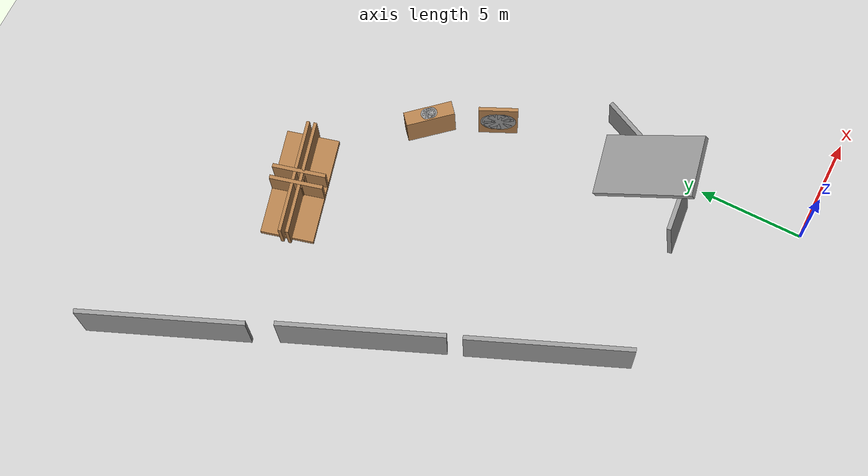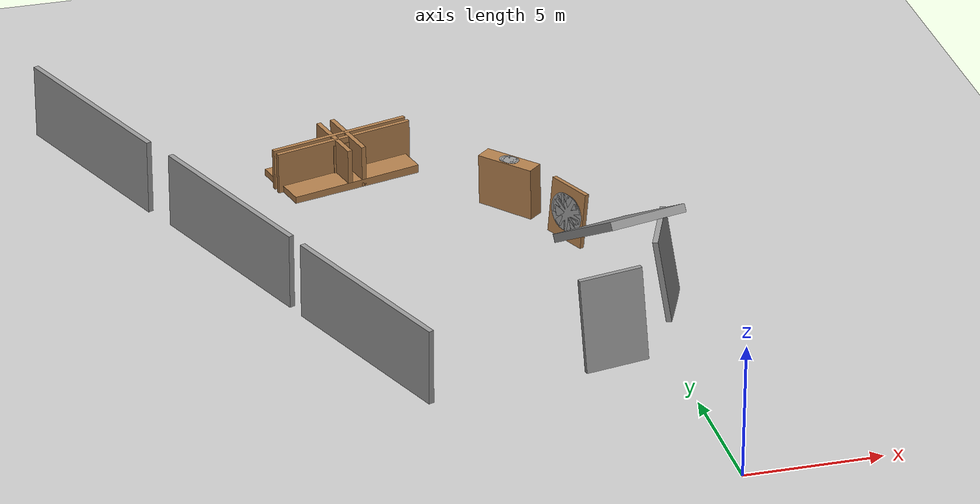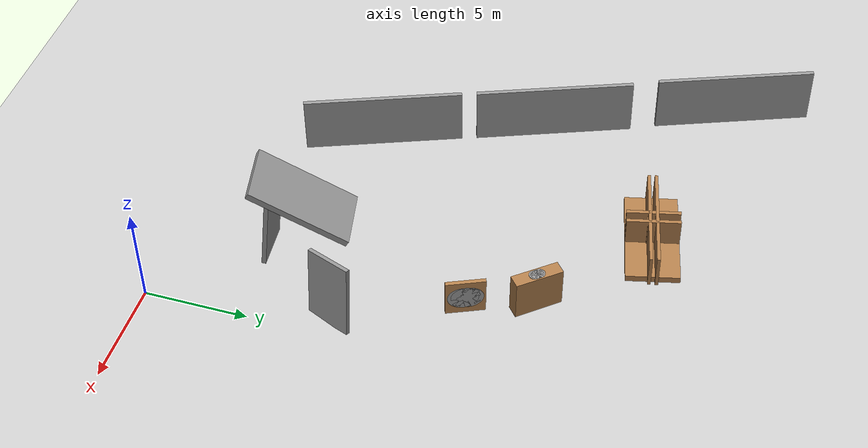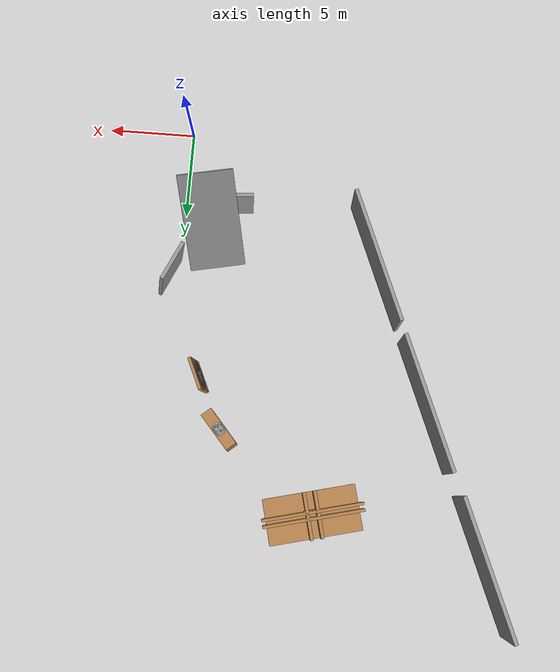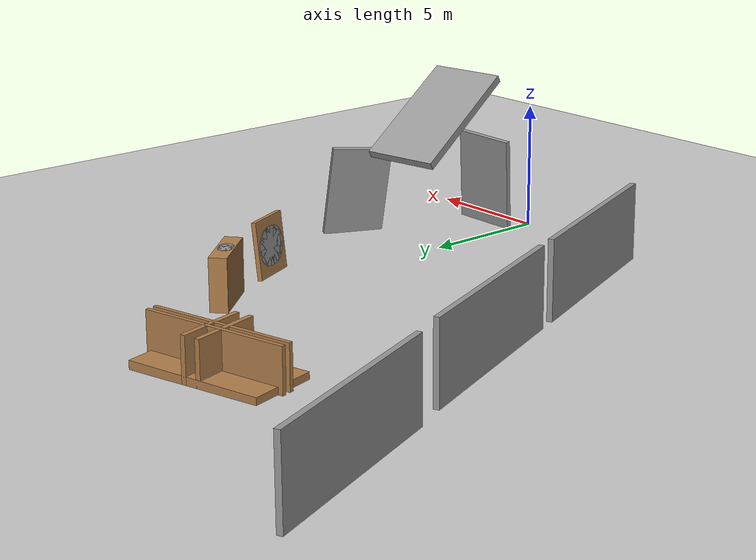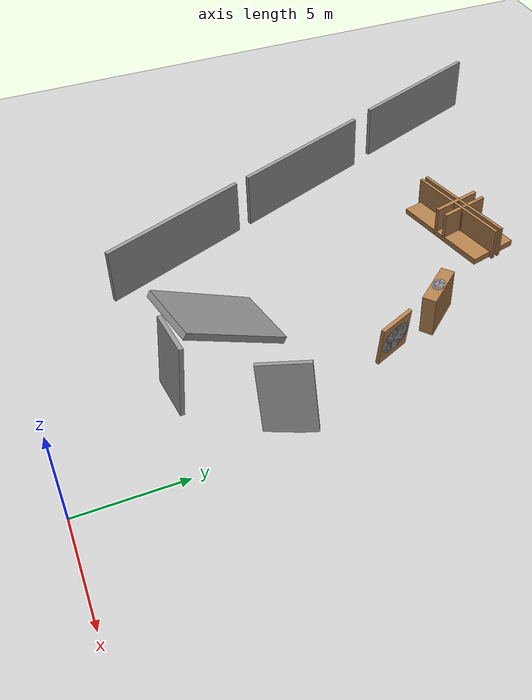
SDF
<sdf version="1.7">
 <world name="default">
  <model name="ground_plane">
   <static>1</static>
   <pose>0 0 1.5059 0 -0 0</pose>
   <link name="link">
    <collision name="collision">
     <pose>0 0 -0.002 0 -0 0</pose>
     <laser_retro>25</laser_retro>
     <geometry><plane><normal>0 0 1</normal><size>100 100</size></plane></geometry>
     <surface><friction><ode><mu>100</mu><mu2>50</mu2></ode></friction></surface>
    </collision>
    <visual name="visual">
     <pose>0 0 -0.003 0 -0 0</pose>
     <cast_shadows>0</cast_shadows>
     <geometry><plane><normal>0 0 1</normal><size>100 100</size></plane></geometry>
     <material>
      <script><uri>file://media/materials/scripts/gazebo.material</uri><name>Gazebo/Grey</name></script>
     </material>
    </visual>
   </link>
  </model>
  <model name="grey_wall">
   <static>1</static>
   <link name="link">
    <pose>0 0 1.4 0 -0 0</pose>
    <collision name="collision">
     <laser_retro>8</laser_retro>
     <geometry><box><size>7.5 0.2 2.8</size></box></geometry>
    </collision>
    <visual name="visual">
     <cast_shadows>0</cast_shadows>
     <geometry><box><size>7.5 0.2 2.8</size></box></geometry>
     <material>
      <script>
       <uri>model://grey_wall/materials/scripts</uri>
       <uri>model://grey_wall/materials/textures</uri>
       <name>vrc/grey_wall</name>
      </script>
     </material>
    </visual>
   </link>
   <pose>-11.0024 7.91215 1.74726 0 -0 1.94998</pose>
  </model>
  <model name="grey_wall_clone">
   <static>1</static>
   <link name="link">
    <pose>0 0 1.4 0 -0 0</pose>
    <collision name="collision">
     <laser_retro>9</laser_retro>
     <geometry><box><size>7.5 0.2 2.8</size></box></geometry>
    </collision>
    <visual name="visual">
     <cast_shadows>0</cast_shadows>
     <geometry><box><size>7.5 0.2 2.8</size></box></geometry>
     <material>
      <script>
       <uri>model://grey_wall/materials/scripts</uri>
       <uri>model://grey_wall/materials/textures</uri>
       <name>vrc/grey_wall</name>
      </script>
     </material>
    </visual>
   </link>
   <pose>-14.0195 15.5417 1.74726 0 -0 1.94998</pose>
  </model>
  <model name="grey_wall_clone_0">
   <static>1</static>
   <link name="link">
    <pose>0 0 1.4 0 -0 0</pose>
    <collision name="collision">
     <laser_retro>10</laser_retro>
     <geometry><box><size>7.5 0.2 2.8</size></box></geometry>
    </collision>
    <visual name="visual">
     <cast_shadows>0</cast_shadows>
     <geometry><box><size>7.5 0.2 2.8</size></box></geometry>
     <material>
      <script>
       <uri>model://grey_wall/materials/scripts</uri>
       <uri>model://grey_wall/materials/textures</uri>
       <name>vrc/grey_wall</name>
      </script>
     </material>
    </visual>
   </link>
   <pose>-17.3467 23.6239 1.74726 0 -0 1.94998</pose>
  </model>
  <model name="grey_wall_clone_1_clone">
   <static>1</static>
   <link name="link">
    <pose>0 0 1.4 0 -0 0</pose>
    <collision name="collision">
     <laser_retro>12</laser_retro>
     <geometry><box><size>7.5 0.2 2.8</size></box></geometry>
    </collision>
    <visual name="visual">
     <cast_shadows>0</cast_shadows>
     <geometry><box><size>7.5 0.2 2.8</size></box></geometry>
     <material>
      <script>
       <uri>model://grey_wall/materials/scripts</uri>
       <uri>model://grey_wall/materials/textures</uri>
       <name>vrc/grey_wall</name>
      </script>
     </material>
    </visual>
   </link>
   <pose>-9.27444 7.54376 1.24555 1.53702 -0.001235 1.94198</pose>
  </model>
  <model name="grey_wall_clone_1_clone_clone">
   <static>1</static>
   <link name="link">
    <pose>0 0 1.4 0 -0 0</pose>
    <collision name="collision">
     <laser_retro>13</laser_retro>
     <geometry><box><size>7.5 0.2 2.8</size></box></geometry>
    </collision>
    <visual name="visual">
     <cast_shadows>0</cast_shadows>
     <geometry><box><size>7.5 0.2 2.8</size></box></geometry>
     <material>
      <script>
       <uri>model://grey_wall/materials/scripts</uri>
       <uri>model://grey_wall/materials/textures</uri>
       <name>vrc/grey_wall</name>
      </script>
     </material>
    </visual>
   </link>
   <pose>-8.48696 10.4228 1.24554 1.53738 -0.005117 1.82659</pose>
  </model>
  <model name="m02">
   <link name="link">
    <pose>0 -0 1.4 0 -0 0</pose>
    <kinematic>1</kinematic>
    <inertial>
     <inertia><ixx>0</ixx><ixy>0</ixy><ixz>0</ixz><iyy>0</iyy><iyz>0</iyz><izz>0</izz></inertia>
     <mass>0</mass>
    </inertial>
    <visual name="visual">
     <cast_shadows>0</cast_shadows>
     <geometry><box><size>3.45752 0.2 2.28355</size></box></geometry>
     <material>
      <script>
       <uri>model://grey_wall/materials/scripts</uri>
       <uri>model://grey_wall/materials/textures</uri>
       <name>vrc/grey_wall</name>
      </script>
      <shader type="pixel"/>
     </material>
    </visual>
    <collision name="collision">
     <laser_retro>2</laser_retro>
     <geometry><box><size>3.45752 0.2 2.28355</size></box></geometry>
     <surface>
      <friction>
       <ode><mu>1</mu><mu2>1</mu2><fdir1>0 0 0</fdir1><slip1>0</slip1><slip2>0</slip2></ode>
       <torsional>
        <coefficient>1</coefficient>
        <patch_radius>0</patch_radius>
        <surface_radius>0</surface_radius>
        <use_patch_radius>1</use_patch_radius>
        <ode><slip>0</slip></ode>
       </torsional>
      </friction>
      <bounce><restitution_coefficient>0</restitution_coefficient><threshold>1e+06</threshold></bounce>
      <contact>
       <collide_without_contact>0</collide_without_contact>
       <collide_without_contact_bitmask>1</collide_without_contact_bitmask>
       <collide_bitmask>1</collide_bitmask>
       <ode>
        <soft_cfm>0</soft_cfm>
        <soft_erp>0.2</soft_erp>
        <kp>1e+13</kp>
        <kd>1</kd>
        <max_vel>0.01</max_vel>
        <min_depth>0</min_depth>
       </ode>
       <bullet>
        <split_impulse>1</split_impulse>
        <split_impulse_penetration_threshold>-0.01</split_impulse_penetration_threshold>
        <soft_cfm>0</soft_cfm>
        <soft_erp>0.2</soft_erp>
        <kp>1e+13</kp>
        <kd>1</kd>
       </bullet>
      </contact>
     </surface>
    </collision>
   </link>
   <static>0</static>
   <pose>-0.501189 7.86915 3.00267 -1.06146 1.39217 0.093708</pose>
  </model>
  <model name="m03">
   <link name="link">
    <pose>0 0 1.4 0 -0 0</pose>
    <kinematic>1</kinematic>
    <inertial>
     <inertia><ixx>0</ixx><ixy>0</ixy><ixz>0</ixz><iyy>0</iyy><iyz>0</iyz><izz>0</izz></inertia>
     <mass>0</mass>
    </inertial>
    <visual name="visual">
     <cast_shadows>0</cast_shadows>
     <geometry><box><size>3.45752 0.2 2.28355</size></box></geometry>
     <material>
      <script>
       <uri>model://grey_wall/materials/scripts</uri>
       <uri>model://grey_wall/materials/textures</uri>
       <name>vrc/grey_wall</name>
      </script>
      <shader type="pixel"/>
     </material>
    </visual>
    <collision name="collision">
     <laser_retro>3</laser_retro>
     <geometry><box><size>3.45752 0.2 2.28355</size></box></geometry>
     <surface>
      <friction>
       <ode><mu>1</mu><mu2>1</mu2><fdir1>0 0 0</fdir1><slip1>0</slip1><slip2>0</slip2></ode>
       <torsional>
        <coefficient>1</coefficient>
        <patch_radius>0</patch_radius>
        <surface_radius>0</surface_radius>
        <use_patch_radius>1</use_patch_radius>
        <ode><slip>0</slip></ode>
       </torsional>
      </friction>
      <bounce><restitution_coefficient>0</restitution_coefficient><threshold>1e+06</threshold></bounce>
      <contact>
       <collide_without_contact>0</collide_without_contact>
       <collide_without_contact_bitmask>1</collide_without_contact_bitmask>
       <collide_bitmask>1</collide_bitmask>
       <ode>
        <soft_cfm>0</soft_cfm>
        <soft_erp>0.2</soft_erp>
        <kp>1e+13</kp>
        <kd>1</kd>
        <max_vel>0.01</max_vel>
        <min_depth>0</min_depth>
       </ode>
       <bullet>
        <split_impulse>1</split_impulse>
        <split_impulse_penetration_threshold>-0.01</split_impulse_penetration_threshold>
        <soft_cfm>0</soft_cfm>
        <soft_erp>0.2</soft_erp>
        <kp>1e+13</kp>
        <kd>1</kd>
       </bullet>
      </contact>
     </surface>
    </collision>
   </link>
   <static>0</static>
   <pose>-4.37676 5.20154 3.45041 -1.08145 1.45895 -0.981676</pose>
  </model>
  <model name="m05">
   <link name="base">
    <pose>0 0 0.00523 0 -0 0</pose>
    <inertial>
     <mass>2460.19</mass>
     <inertia><ixx>1987.56</ixx><ixy>0</ixy><ixz>0</ixz><iyy>1022.99</iyy><iyz>0</iyz><izz>1132.66</izz></inertia>
    </inertial>
    <kinematic>1</kinematic>
    <visual name="tee_nut_2">
     <pose>0 -0.038 0 0 -0 0</pose>
     <geometry><cylinder><radius>0.260995</radius><length>2.15849</length></cylinder></geometry>
     <material>
      <script><uri>file://media/materials/scripts/gazebo.material</uri><name>Gazebo/Grey</name></script>
      <shader type="pixel"/>
     </material>
    </visual>
    <visual name="tee_nut_3">
     <pose>0 0.038 0 0 -0 0</pose>
     <geometry><cylinder><radius>0.260995</radius><length>2.15849</length></cylinder></geometry>
     <material>
      <script><uri>file://media/materials/scripts/gazebo.material</uri><name>Gazebo/Grey</name></script>
      <shader type="pixel"/>
     </material>
    </visual>
    <visual name="tee_nut_4">
     <pose>0 0.116 0 0 -0 0</pose>
     <geometry><cylinder><radius>0.260995</radius><length>2.15849</length></cylinder></geometry>
     <material>
      <script><uri>file://media/materials/scripts/gazebo.material</uri><name>Gazebo/Grey</name></script>
      <shader type="pixel"/>
     </material>
    </visual>
    <visual name="visual">
     <geometry><box><size>0.64025 2.26159 2.14006</size></box></geometry>
     <material>
      <script><uri>file://media/materials/scripts/gazebo.material</uri><name>Gazebo/Wood</name></script>
      <shader type="pixel"/>
     </material>
    </visual>
    <visual name="tee_nut_1">
     <pose>0 -0.116 0 0 -0 0</pose>
     <geometry><cylinder><radius>0.260995</radius><length>2.15849</length></cylinder></geometry>
     <material>
      <script><uri>file://media/materials/scripts/gazebo.material</uri><name>Gazebo/Grey</name></script>
      <shader type="pixel"/>
     </material>
    </visual>
    <collision name="collision">
     <laser_retro>5</laser_retro>
     <geometry><box><size>0.64025 2.26159 2.14006</size></box></geometry>
     <surface>
      <friction>
       <ode><mu>1</mu><mu2>1</mu2><fdir1>0 0 0</fdir1><slip1>0</slip1><slip2>0</slip2></ode>
       <torsional>
        <coefficient>1</coefficient>
        <patch_radius>0</patch_radius>
        <surface_radius>0.01</surface_radius>
        <use_patch_radius>0</use_patch_radius>
        <ode><slip>0</slip></ode>
       </torsional>
      </friction>
      <bounce><restitution_coefficient>0</restitution_coefficient><threshold>1e+06</threshold></bounce>
      <contact>
       <collide_without_contact>0</collide_without_contact>
       <collide_without_contact_bitmask>1</collide_without_contact_bitmask>
       <collide_bitmask>1</collide_bitmask>
       <ode>
        <soft_cfm>0</soft_cfm>
        <soft_erp>0.2</soft_erp>
        <kp>100000</kp>
        <kd>100</kd>
        <max_vel>100</max_vel>
        <min_depth>0.001</min_depth>
       </ode>
       <bullet>
        <split_impulse>1</split_impulse>
        <split_impulse_penetration_threshold>-0.01</split_impulse_penetration_threshold>
        <soft_cfm>0</soft_cfm>
        <soft_erp>0.2</soft_erp>
        <kp>100000</kp>
        <kd>100</kd>
       </bullet>
      </contact>
     </surface>
    </collision>
   </link>
   <static>0</static>
   <pose>-3.26045 17.5983 2.3544 -0.018774 -0.009864 0.707145</pose>
  </model>
  <model name="m06">
   <link name="link">
    <pose>0 0 1.4 0 -0 0</pose>
    <kinematic>1</kinematic>
    <inertial>
     <inertia><ixx>0</ixx><ixy>0</ixy><ixz>0</ixz><iyy>0</iyy><iyz>0</iyz><izz>0</izz></inertia>
     <mass>0</mass>
    </inertial>
    <visual name="visual">
     <cast_shadows>0</cast_shadows>
     <geometry><box><size>4.88532 0.3 2.82859</size></box></geometry>
     <material>
      <script>
       <uri>model://grey_wall/materials/scripts</uri>
       <uri>model://grey_wall/materials/textures</uri>
       <name>vrc/grey_wall</name>
      </script>
      <shader type="pixel"/>
     </material>
    </visual>
    <collision name="collision">
     <laser_retro>6</laser_retro>
     <geometry><box><size>4.88532 0.3 2.82859</size></box></geometry>
     <surface>
      <friction>
       <ode><mu>1</mu><mu2>1</mu2><fdir1>0 0 0</fdir1><slip1>0</slip1><slip2>0</slip2></ode>
       <torsional>
        <coefficient>1</coefficient>
        <patch_radius>0</patch_radius>
        <surface_radius>0</surface_radius>
        <use_patch_radius>1</use_patch_radius>
        <ode><slip>0</slip></ode>
       </torsional>
      </friction>
      <bounce><restitution_coefficient>0</restitution_coefficient><threshold>1e+06</threshold></bounce>
      <contact>
       <collide_without_contact>0</collide_without_contact>
       <collide_without_contact_bitmask>1</collide_without_contact_bitmask>
       <collide_bitmask>1</collide_bitmask>
       <ode>
        <soft_cfm>0</soft_cfm>
        <soft_erp>0.2</soft_erp>
        <kp>1e+13</kp>
        <kd>1</kd>
        <max_vel>0.01</max_vel>
        <min_depth>0</min_depth>
       </ode>
       <bullet>
        <split_impulse>1</split_impulse>
        <split_impulse_penetration_threshold>-0.01</split_impulse_penetration_threshold>
        <soft_cfm>0</soft_cfm>
        <soft_erp>0.2</soft_erp>
        <kp>1e+13</kp>
        <kd>1</kd>
       </bullet>
      </contact>
     </surface>
    </collision>
   </link>
   <static>0</static>
   <pose>-3.63792 6.98821 6.11154 1.55352 0.54126 1.76664</pose>
  </model>
  <model name="wooden_case_clone_1">
   <link name="base">
    <pose>-0 -0 0.024 0 -0 0</pose>
    <inertial>
     <pose>-0.022184 0 0.171592 0 -0 0</pose>
     <mass>6691.87</mass>
     <inertia>
      <ixx>138.272</ixx>
      <ixy>0</ixy>
      <ixz>0.000779377</ixz>
      <iyy>3575.92</iyy>
      <iyz>0</iyz>
      <izz>3674.85</izz>
     </inertia>
    </inertial>
    <visual name="visual_back">
     <pose>-0.053975 0 0.1778 0 -0 0</pose>
     <geometry><box><size>0.445434 5.03693 2.48459</size></box></geometry>
     <material>
      <script><uri>file://media/materials/scripts/gazebo.material</uri><name>Gazebo/Wood</name></script>
      <shader type="pixel"/>
     </material>
    </visual>
    <visual name="visual_bottom">
     <pose>0 0 0.009525 0 -0 0</pose>
     <geometry><box><size>2.96956 5.38834 0.149075</size></box></geometry>
     <material>
      <script><uri>file://media/materials/scripts/gazebo.material</uri><name>Gazebo/Wood</name></script>
      <shader type="pixel"/>
     </material>
    </visual>
    <visual name="visual_top">
     <pose>0 0 0.346075 0 -0 0</pose>
     <geometry><box><size>2.96956 5.38834 0.149075</size></box></geometry>
     <material>
      <script><uri>file://media/materials/scripts/gazebo.material</uri><name>Gazebo/Wood</name></script>
      <shader type="pixel"/>
     </material>
    </visual>
    <visual name="visual_left">
     <pose>0 -0.282575 0.1778 0 -0 0</pose>
     <geometry><box><size>2.96956 0.175706 2.48459</size></box></geometry>
     <material>
      <script><uri>file://media/materials/scripts/gazebo.material</uri><name>Gazebo/Wood</name></script>
      <shader type="pixel"/>
     </material>
    </visual>
    <visual name="visual_right">
     <pose>0 0.282575 0.1778 0 -0 0</pose>
     <geometry><box><size>2.96956 0.175706 2.48459</size></box></geometry>
     <material>
      <script><uri>file://media/materials/scripts/gazebo.material</uri><name>Gazebo/Wood</name></script>
      <shader type="pixel"/>
     </material>
    </visual>
    <visual name="visual_block_left">
     <pose>0.0095 -0.2151 -0.012 0 -0 0</pose>
     <geometry><box><size>2.5253 0.461172 0.187811</size></box></geometry>
     <material>
      <script><uri>file://media/materials/scripts/gazebo.material</uri><name>Gazebo/Wood</name></script>
      <shader type="pixel"/>
     </material>
    </visual>
    <visual name="visual_block_right">
     <pose>0.0095 0.2151 -0.012 0 -0 0</pose>
     <geometry><box><size>2.5253 0.461172 0.187811</size></box></geometry>
     <material>
      <script><uri>file://media/materials/scripts/gazebo.material</uri><name>Gazebo/Wood</name></script>
      <shader type="pixel"/>
     </material>
    </visual>
    <collision name="collision_back">
     <laser_retro>1</laser_retro>
     <pose>-0.053975 0 0.1778 0 -0 0</pose>
     <geometry><box><size>0.445434 5.03693 2.48459</size></box></geometry>
     <surface>
      <friction>
       <ode><mu>1</mu><mu2>1</mu2><fdir1>0 0 0</fdir1><slip1>0</slip1><slip2>0</slip2></ode>
       <torsional>
        <coefficient>1</coefficient>
        <patch_radius>0</patch_radius>
        <surface_radius>0.01</surface_radius>
        <use_patch_radius>0</use_patch_radius>
        <ode><slip>0</slip></ode>
       </torsional>
      </friction>
      <bounce><restitution_coefficient>0</restitution_coefficient><threshold>1e+06</threshold></bounce>
      <contact>
       <collide_without_contact>0</collide_without_contact>
       <collide_without_contact_bitmask>1</collide_without_contact_bitmask>
       <collide_bitmask>1</collide_bitmask>
       <ode>
        <soft_cfm>0</soft_cfm>
        <soft_erp>0.2</soft_erp>
        <kp>100000</kp>
        <kd>100</kd>
        <max_vel>100</max_vel>
        <min_depth>0.001</min_depth>
       </ode>
       <bullet>
        <split_impulse>1</split_impulse>
        <split_impulse_penetration_threshold>-0.01</split_impulse_penetration_threshold>
        <soft_cfm>0</soft_cfm>
        <soft_erp>0.2</soft_erp>
        <kp>100000</kp>
        <kd>100</kd>
       </bullet>
      </contact>
     </surface>
    </collision>
    <collision name="collision_bottom">
     <laser_retro>1</laser_retro>
     <pose>0 0 0.009525 0 -0 0</pose>
     <geometry><box><size>2.96956 5.38834 0.149075</size></box></geometry>
     <surface>
      <friction>
       <ode><mu>1</mu><mu2>1</mu2><fdir1>0 0 0</fdir1><slip1>0</slip1><slip2>0</slip2></ode>
       <torsional>
        <coefficient>1</coefficient>
        <patch_radius>0</patch_radius>
        <surface_radius>0.01</surface_radius>
        <use_patch_radius>0</use_patch_radius>
        <ode><slip>0</slip></ode>
       </torsional>
      </friction>
      <bounce><restitution_coefficient>0</restitution_coefficient><threshold>1e+06</threshold></bounce>
      <contact>
       <collide_without_contact>0</collide_without_contact>
       <collide_without_contact_bitmask>1</collide_without_contact_bitmask>
       <collide_bitmask>1</collide_bitmask>
       <ode>
        <soft_cfm>0</soft_cfm>
        <soft_erp>0.2</soft_erp>
        <kp>100000</kp>
        <kd>100</kd>
        <max_vel>100</max_vel>
        <min_depth>0.001</min_depth>
       </ode>
       <bullet>
        <split_impulse>1</split_impulse>
        <split_impulse_penetration_threshold>-0.01</split_impulse_penetration_threshold>
        <soft_cfm>0</soft_cfm>
        <soft_erp>0.2</soft_erp>
        <kp>100000</kp>
        <kd>100</kd>
       </bullet>
      </contact>
     </surface>
    </collision>
    <collision name="collision_top">
     <laser_retro>1</laser_retro>
     <pose>0 0 0.346075 0 -0 0</pose>
     <geometry><box><size>2.96956 5.38834 0.149075</size></box></geometry>
     <surface>
      <friction>
       <ode><mu>1</mu><mu2>1</mu2><fdir1>0 0 0</fdir1><slip1>0</slip1><slip2>0</slip2></ode>
       <torsional>
        <coefficient>1</coefficient>
        <patch_radius>0</patch_radius>
        <surface_radius>0.01</surface_radius>
        <use_patch_radius>0</use_patch_radius>
        <ode><slip>0</slip></ode>
       </torsional>
      </friction>
      <bounce><restitution_coefficient>0</restitution_coefficient><threshold>1e+06</threshold></bounce>
      <contact>
       <collide_without_contact>0</collide_without_contact>
       <collide_without_contact_bitmask>1</collide_without_contact_bitmask>
       <collide_bitmask>1</collide_bitmask>
       <ode>
        <soft_cfm>0</soft_cfm>
        <soft_erp>0.2</soft_erp>
        <kp>100000</kp>
        <kd>100</kd>
        <max_vel>100</max_vel>
        <min_depth>0.001</min_depth>
       </ode>
       <bullet>
        <split_impulse>1</split_impulse>
        <split_impulse_penetration_threshold>-0.01</split_impulse_penetration_threshold>
        <soft_cfm>0</soft_cfm>
        <soft_erp>0.2</soft_erp>
        <kp>100000</kp>
        <kd>100</kd>
       </bullet>
      </contact>
     </surface>
    </collision>
    <collision name="collision_left">
     <laser_retro>1</laser_retro>
     <pose>0 -0.282575 0.1778 0 -0 0</pose>
     <geometry><box><size>2.96956 0.175706 2.48459</size></box></geometry>
     <surface>
      <friction>
       <ode><mu>1</mu><mu2>1</mu2><fdir1>0 0 0</fdir1><slip1>0</slip1><slip2>0</slip2></ode>
       <torsional>
        <coefficient>1</coefficient>
        <patch_radius>0</patch_radius>
        <surface_radius>0.01</surface_radius>
        <use_patch_radius>0</use_patch_radius>
        <ode><slip>0</slip></ode>
       </torsional>
      </friction>
      <bounce><restitution_coefficient>0</restitution_coefficient><threshold>1e+06</threshold></bounce>
      <contact>
       <collide_without_contact>0</collide_without_contact>
       <collide_without_contact_bitmask>1</collide_without_contact_bitmask>
       <collide_bitmask>1</collide_bitmask>
       <ode>
        <soft_cfm>0</soft_cfm>
        <soft_erp>0.2</soft_erp>
        <kp>100000</kp>
        <kd>100</kd>
        <max_vel>100</max_vel>
        <min_depth>0.001</min_depth>
       </ode>
       <bullet>
        <split_impulse>1</split_impulse>
        <split_impulse_penetration_threshold>-0.01</split_impulse_penetration_threshold>
        <soft_cfm>0</soft_cfm>
        <soft_erp>0.2</soft_erp>
        <kp>100000</kp>
        <kd>100</kd>
       </bullet>
      </contact>
     </surface>
    </collision>
    <collision name="collision_right">
     <laser_retro>1</laser_retro>
     <pose>0 0.282575 0.1778 0 -0 0</pose>
     <geometry><box><size>2.96956 0.175706 2.48459</size></box></geometry>
     <surface>
      <friction>
       <ode><mu>1</mu><mu2>1</mu2><fdir1>0 0 0</fdir1><slip1>0</slip1><slip2>0</slip2></ode>
       <torsional>
        <coefficient>1</coefficient>
        <patch_radius>0</patch_radius>
        <surface_radius>0.01</surface_radius>
        <use_patch_radius>0</use_patch_radius>
        <ode><slip>0</slip></ode>
       </torsional>
      </friction>
      <bounce><restitution_coefficient>0</restitution_coefficient><threshold>1e+06</threshold></bounce>
      <contact>
       <collide_without_contact>0</collide_without_contact>
       <collide_without_contact_bitmask>1</collide_without_contact_bitmask>
       <collide_bitmask>1</collide_bitmask>
       <ode>
        <soft_cfm>0</soft_cfm>
        <soft_erp>0.2</soft_erp>
        <kp>100000</kp>
        <kd>100</kd>
        <max_vel>100</max_vel>
        <min_depth>0.001</min_depth>
       </ode>
       <bullet>
        <split_impulse>1</split_impulse>
        <split_impulse_penetration_threshold>-0.01</split_impulse_penetration_threshold>
        <soft_cfm>0</soft_cfm>
        <soft_erp>0.2</soft_erp>
        <kp>100000</kp>
        <kd>100</kd>
       </bullet>
      </contact>
     </surface>
    </collision>
    <collision name="collision_block_left">
     <laser_retro>1</laser_retro>
     <pose>0.0095 -0.2151 -0.012 0 -0 0</pose>
     <geometry><box><size>2.5253 0.461172 0.187811</size></box></geometry>
     <surface>
      <friction>
       <ode><mu>1</mu><mu2>1</mu2><fdir1>0 0 0</fdir1><slip1>0</slip1><slip2>0</slip2></ode>
       <torsional>
        <coefficient>1</coefficient>
        <patch_radius>0</patch_radius>
        <surface_radius>0.01</surface_radius>
        <use_patch_radius>0</use_patch_radius>
        <ode><slip>0</slip></ode>
       </torsional>
      </friction>
      <bounce><restitution_coefficient>0</restitution_coefficient><threshold>1e+06</threshold></bounce>
      <contact>
       <collide_without_contact>0</collide_without_contact>
       <collide_without_contact_bitmask>1</collide_without_contact_bitmask>
       <collide_bitmask>1</collide_bitmask>
       <ode>
        <soft_cfm>0</soft_cfm>
        <soft_erp>0.2</soft_erp>
        <kp>100000</kp>
        <kd>100</kd>
        <max_vel>100</max_vel>
        <min_depth>0.001</min_depth>
       </ode>
       <bullet>
        <split_impulse>1</split_impulse>
        <split_impulse_penetration_threshold>-0.01</split_impulse_penetration_threshold>
        <soft_cfm>0</soft_cfm>
        <soft_erp>0.2</soft_erp>
        <kp>100000</kp>
        <kd>100</kd>
       </bullet>
      </contact>
     </surface>
    </collision>
    <collision name="collision_block_right">
     <laser_retro>1</laser_retro>
     <pose>0.0095 0.2151 -0.012 0 -0 0</pose>
     <geometry><box><size>2.5253 0.461172 0.187811</size></box></geometry>
     <surface>
      <friction>
       <ode><mu>1</mu><mu2>1</mu2><fdir1>0 0 0</fdir1><slip1>0</slip1><slip2>0</slip2></ode>
       <torsional>
        <coefficient>1</coefficient>
        <patch_radius>0</patch_radius>
        <surface_radius>0.01</surface_radius>
        <use_patch_radius>0</use_patch_radius>
        <ode><slip>0</slip></ode>
       </torsional>
      </friction>
      <bounce><restitution_coefficient>0</restitution_coefficient><threshold>1e+06</threshold></bounce>
      <contact>
       <collide_without_contact>0</collide_without_contact>
       <collide_without_contact_bitmask>1</collide_without_contact_bitmask>
       <collide_bitmask>1</collide_bitmask>
       <ode>
        <soft_cfm>0</soft_cfm>
        <soft_erp>0.2</soft_erp>
        <kp>100000</kp>
        <kd>100</kd>
        <max_vel>100</max_vel>
        <min_depth>0.001</min_depth>
       </ode>
       <bullet>
        <split_impulse>1</split_impulse>
        <split_impulse_penetration_threshold>-0.01</split_impulse_penetration_threshold>
        <soft_cfm>0</soft_cfm>
        <soft_erp>0.2</soft_erp>
        <kp>100000</kp>
        <kd>100</kd>
       </bullet>
      </contact>
     </surface>
    </collision>
   </link>
   <link name="lid">
    <pose>0.243775 -1e-06 0.009525 0 -0 0</pose>
    <inertial>
     <mass>1.97874</mass>
     <inertia>
      <ixx>0.0563367</ixx>
      <ixy>0</ixy>
      <ixz>0</ixz>
      <iyy>0.020911</iyy>
      <iyz>0</iyz>
      <izz>0.0771281</izz>
     </inertia>
    </inertial>
    <visual name="visual">
     <geometry><box><size>0.3556 0.5842 0.01905</size></box></geometry>
     <material>
      <script><uri>file://media/materials/scripts/gazebo.material</uri><name>Gazebo/Wood</name></script>
      <shader type="pixel"/>
     </material>
    </visual>
    <visual name="tee_nut_1">
     <pose>0.122 -0.216 0 0 -0 0</pose>
     <geometry><cylinder><radius>0.00635</radius><length>0.0192405</length></cylinder></geometry>
     <material>
      <script><uri>file://media/materials/scripts/gazebo.material</uri><name>Gazebo/Grey</name></script>
      <shader type="pixel"/>
     </material>
    </visual>
    <visual name="tee_nut_3">
     <pose>0.122 0.088 0 0 -0 0</pose>
     <geometry><cylinder><radius>0.00635</radius><length>0.0192405</length></cylinder></geometry>
     <material>
      <script><uri>file://media/materials/scripts/gazebo.material</uri><name>Gazebo/Grey</name></script>
      <shader type="pixel"/>
     </material>
    </visual>
    <visual name="tee_nut_2">
     <pose>0.122 -0.088 0 0 -0 0</pose>
     <geometry><cylinder><radius>0.00635</radius><length>0.0192405</length></cylinder></geometry>
     <material>
      <script><uri>file://media/materials/scripts/gazebo.material</uri><name>Gazebo/Grey</name></script>
      <shader type="pixel"/>
     </material>
    </visual>
    <visual name="tee_nut_4">
     <pose>0.122 0.216 0 0 -0 0</pose>
     <geometry><cylinder><radius>0.00635</radius><length>0.0192405</length></cylinder></geometry>
     <material>
      <script><uri>file://media/materials/scripts/gazebo.material</uri><name>Gazebo/Grey</name></script>
      <shader type="pixel"/>
     </material>
    </visual>
    <collision name="collision">
     <laser_retro>1</laser_retro>
     <geometry><box><size>0.3556 0.5842 0.01905</size></box></geometry>
     <surface>
      <friction>
       <ode><mu>1</mu><mu2>1</mu2><fdir1>0 0 0</fdir1><slip1>0</slip1><slip2>0</slip2></ode>
       <torsional>
        <coefficient>1</coefficient>
        <patch_radius>0</patch_radius>
        <surface_radius>0.01</surface_radius>
        <use_patch_radius>0</use_patch_radius>
        <ode><slip>0</slip></ode>
       </torsional>
      </friction>
      <bounce><restitution_coefficient>0</restitution_coefficient><threshold>1e+06</threshold></bounce>
      <contact>
       <collide_without_contact>0</collide_without_contact>
       <collide_without_contact_bitmask>1</collide_without_contact_bitmask>
       <collide_bitmask>1</collide_bitmask>
       <ode>
        <soft_cfm>0</soft_cfm>
        <soft_erp>0.2</soft_erp>
        <kp>100000</kp>
        <kd>100</kd>
        <max_vel>100</max_vel>
        <min_depth>0.001</min_depth>
       </ode>
       <bullet>
        <split_impulse>1</split_impulse>
        <split_impulse_penetration_threshold>-0.01</split_impulse_penetration_threshold>
        <soft_cfm>0</soft_cfm>
        <soft_erp>0.2</soft_erp>
        <kp>100000</kp>
        <kd>100</kd>
       </bullet>
      </contact>
     </surface>
    </collision>
   </link>
   <joint name="lid_hinge" type="revolute">
    <parent>base</parent>
    <child>lid</child>
    <pose>-0.1778 0 0.01905 0 -0 0</pose>
    <axis>
     <xyz>0 1 0</xyz>
     <limit><lower>-1.5708</lower><upper>0.523599</upper><effort>-1</effort><velocity>-1</velocity></limit>
     <dynamics>
      <spring_reference>0</spring_reference>
      <spring_stiffness>0</spring_stiffness>
      <damping>0</damping>
      <friction>0</friction>
     </dynamics>
    </axis>
    <physics>
     <ode><limit><cfm>0</cfm><erp>0.2</erp></limit><suspension><cfm>0</cfm><erp>0.2</erp></suspension></ode>
    </physics>
   </joint>
   <static>1</static>
   <pose>-8.4619 21.4769 1.59 1.67729 -1.55928 -3.00931</pose>
  </model>
  <model name="m01">
   <link name="base">
    <pose>-0 -0 0.00523 0 -0 0</pose>
    <inertial>
     <mass>512.133</mass>
     <inertia><ixx>140.133</ixx><ixy>0</ixy><ixz>0</ixz><iyy>187.791</iyy><iyz>0</iyz><izz>325.376</izz></inertia>
    </inertial>
    <kinematic>1</kinematic>
    <visual name="tee_nut_2">
     <pose>0 -0.038 0 0 -0 0</pose>
     <geometry><cylinder><radius>0.701248</radius><length>0.17452</length></cylinder></geometry>
     <material>
      <script><uri>file://media/materials/scripts/gazebo.material</uri><name>Gazebo/Grey</name></script>
      <shader type="pixel"/>
     </material>
    </visual>
    <visual name="tee_nut_1">
     <pose>0 -0.116 0 0 -0 0</pose>
     <geometry><cylinder><radius>0.701248</radius><length>0.17452</length></cylinder></geometry>
     <material>
      <script><uri>file://media/materials/scripts/gazebo.material</uri><name>Gazebo/Grey</name></script>
      <shader type="pixel"/>
     </material>
    </visual>
    <visual name="visual">
     <geometry><box><size>2.09054 1.80379 0.172793</size></box></geometry>
     <material>
      <script><uri>file://media/materials/scripts/gazebo.material</uri><name>Gazebo/Wood</name></script>
      <shader type="pixel"/>
     </material>
    </visual>
    <visual name="tee_nut_4">
     <pose>0 0.116 0 0 -0 0</pose>
     <geometry><cylinder><radius>0.701248</radius><length>0.17452</length></cylinder></geometry>
     <material>
      <script><uri>file://media/materials/scripts/gazebo.material</uri><name>Gazebo/Grey</name></script>
      <shader type="pixel"/>
     </material>
    </visual>
    <visual name="tee_nut_3">
     <pose>0 0.038 0 0 -0 0</pose>
     <geometry><cylinder><radius>0.701248</radius><length>0.17452</length></cylinder></geometry>
     <material>
      <script><uri>file://media/materials/scripts/gazebo.material</uri><name>Gazebo/Grey</name></script>
      <shader type="pixel"/>
     </material>
    </visual>
    <collision name="collision">
     <laser_retro>1</laser_retro>
     <geometry><box><size>2.09054 1.80379 0.172793</size></box></geometry>
     <surface>
      <friction>
       <ode><mu>1</mu><mu2>1</mu2><fdir1>0 0 0</fdir1><slip1>0</slip1><slip2>0</slip2></ode>
       <torsional>
        <coefficient>1</coefficient>
        <patch_radius>0</patch_radius>
        <surface_radius>0.01</surface_radius>
        <use_patch_radius>0</use_patch_radius>
        <ode><slip>0</slip></ode>
       </torsional>
      </friction>
      <bounce><restitution_coefficient>0</restitution_coefficient><threshold>1e+06</threshold></bounce>
      <contact>
       <collide_without_contact>0</collide_without_contact>
       <collide_without_contact_bitmask>1</collide_without_contact_bitmask>
       <collide_bitmask>1</collide_bitmask>
       <ode>
        <soft_cfm>0</soft_cfm>
        <soft_erp>0.2</soft_erp>
        <kp>100000</kp>
        <kd>100</kd>
        <max_vel>100</max_vel>
        <min_depth>0.001</min_depth>
       </ode>
       <bullet>
        <split_impulse>1</split_impulse>
        <split_impulse_penetration_threshold>-0.01</split_impulse_penetration_threshold>
        <soft_cfm>0</soft_cfm>
        <soft_erp>0.2</soft_erp>
        <kp>100000</kp>
        <kd>100</kd>
       </bullet>
      </contact>
     </surface>
    </collision>
   </link>
   <static>0</static>
   <pose>-1.87549 14.7622 2.57614 0.00906 -1.47013 0.409537</pose>
  </model>
 </world>
</sdf>
